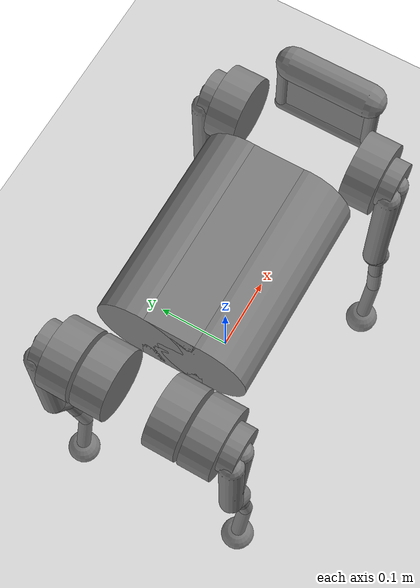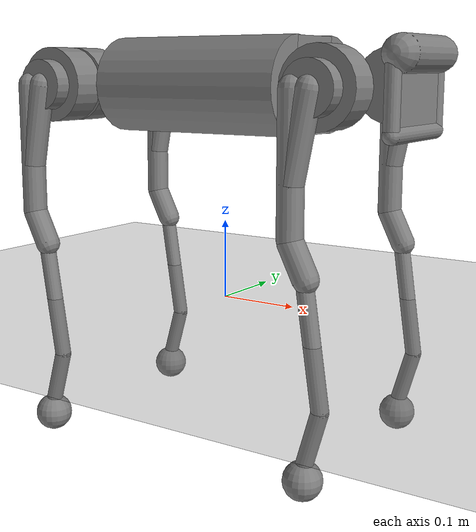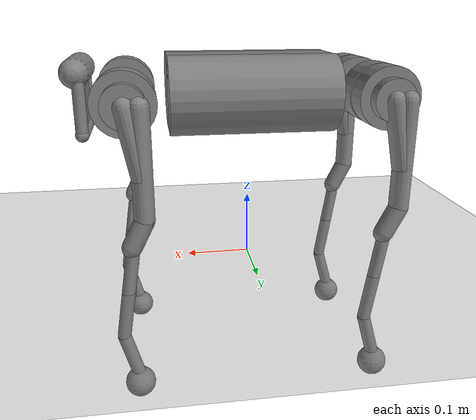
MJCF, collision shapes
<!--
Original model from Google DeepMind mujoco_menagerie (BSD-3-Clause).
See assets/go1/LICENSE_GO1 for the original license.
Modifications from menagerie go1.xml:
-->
<?xml version="1.0" encoding="utf-8"?>
<mujoco model="go1">
  <compiler angle="radian" meshdir="go1" autolimits="true"/>
  <option timestep="0.002" gravity="0 0 -9.81" iterations="50" solver="Newton"
          cone="elliptic" impratio="10"/>

  <visual>
    <headlight ambient="0.5 0.5 0.5" diffuse="0.8 0.8 0.8" specular="0.1 0.1 0.1"/>
    <map force="0.1" zfar="200"/>
    <quality shadowsize="2048"/>
  </visual>

  <asset>
    <texture type="skybox" builtin="gradient" rgb1="0.4 0.6 0.8" rgb2="0.05 0.05 0.2"
             width="100" height="100"/>
    <texture name="floor_tex" type="2d" builtin="checker" rgb1="0.6 0.6 0.6"
             rgb2="0.4 0.4 0.4" width="300" height="300"/>
    <material name="floor_mat" texture="floor_tex" texrepeat="10 10"
              specular="0.5" shininess="0.3" reflectance="0.1"/>
    <material name="dark" rgba="0.2 0.2 0.2 1"/>

    <mesh file="trunk.stl"/>
    <mesh file="hip.stl"/>
    <mesh file="thigh_mirror.stl"/>
    <mesh file="calf.stl"/>
    <mesh file="thigh.stl"/>
  </asset>

  <default>
    <default class="go1">
      <geom friction="1.0 0.01 0.005" margin="0.001" condim="3"/>
      <joint axis="0 1 0" damping="2" armature="0.01" frictionloss="0.2"/>
      <default class="abduction">
        <joint axis="1 0 0" damping="1" range="-0.863 0.863"/>
      </default>
      <default class="hip">
        <joint range="-0.686 4.501"/>
      </default>
      <default class="knee">
        <joint range="-2.818 -0.888"/>
      </default>
      <default class="visual">
        <geom type="mesh" contype="0" conaffinity="0" group="2" material="dark"/>
      </default>
      <default class="collision">
        <geom group="3" type="capsule"/>
        <default class="hip_left1">
          <geom size="0.046 0.02" pos="0 0.045 0" quat="1 1 0 0" type="cylinder"/>
        </default>
        <default class="hip_left2">
          <geom size="0.031 0.02" pos="0 0.065 0" quat="1 1 0 0" type="cylinder"/>
        </default>
        <default class="hip_left3">
          <geom size="0.046 0.02" quat="1 1 0 0" type="cylinder"/>
        </default>
        <default class="hip_right1">
          <geom size="0.046 0.02" pos="0 -0.045 0" quat="1 1 0 0" type="cylinder"/>
        </default>
        <default class="hip_right2">
          <geom size="0.031 0.02" pos="0 -0.065 0" quat="1 1 0 0" type="cylinder"/>
        </default>
        <default class="hip_right3">
          <geom size="0.046 0.02" quat="1 1 0 0" type="cylinder"/>
        </default>
        <default class="thigh1">
          <geom size="0.015" fromto="-0.02 0 0 -0.02 0 -0.16"/>
        </default>
        <default class="thigh2">
          <geom size="0.015" fromto="0 0 0 -0.02 0 -0.1"/>
        </default>
        <default class="thigh3">
          <geom size="0.015" fromto="-0.02 0 -0.16 0 0 -0.2"/>
        </default>
        <default class="calf1">
          <geom size="0.01" fromto="0 0 0 0.02 0 -0.13"/>
        </default>
        <default class="calf2">
          <geom size="0.01" fromto="0.02 0 -0.13 0 0 -0.2"/>
        </default>
        <default class="foot">
          <geom type="sphere" size="0.023" pos="0 0 -0.213" priority="1"
                solimp="0.015 1 0.023" condim="6" friction="1.0 0.02 0.01"/>
        </default>
      </default>
    </default>
    <motor ctrllimited="true" ctrlrange="-33.5 33.5"/>
  </default>

  <worldbody>
    <light name="top" pos="0 0 3" dir="0 0 -1" directional="true"
           diffuse="0.8 0.8 0.8" specular="0.2 0.2 0.2"/>
    <light name="front" pos="2 -2 2" dir="-1 1 -1" diffuse="0.3 0.3 0.3"/>
    <light name="spotlight" mode="targetbodycom" target="trunk" pos="0 -1 2"/>
    <geom name="floor" type="plane" size="200 200 0.1" material="floor_mat"
          condim="6" friction="1.5 0.02 0.01"/>

    <body name="trunk" pos="0 0 0.27" childclass="go1">
      <camera name="tracking" mode="trackcom" pos="0 -1 0.8" xyaxes="1 0 0 0 1 1"/>
      <site name="imu_site" pos="0 0 0" size="0.01"/>
      <site name="head" pos="0.3 0 0" rgba="1 0 0 1" size="0.02" group="5"/>
      <inertial pos="0.0223 0.002 -0.0005" quat="-0.00342088 0.705204 0.000106698 0.708996"
                mass="5.204" diaginertia="0.0716565 0.0630105 0.0168101"/>
      <freejoint name="root"/>
      <geom class="visual" mesh="trunk"/>
      <geom class="collision" size="0.125 0.04 0.057" type="box"/>
      <geom class="collision" quat="1 0 1 0" pos="0 -0.04 0" size="0.058 0.125" type="cylinder"/>
      <geom class="collision" quat="1 0 1 0" pos="0 +0.04 0" size="0.058 0.125" type="cylinder"/>
      <geom class="collision" pos="0.25 0 0" size="0.005 0.06 0.05" type="box"/>
      <geom class="collision" pos="0.25 0.06 -0.01" size="0.009 0.035"/>
      <geom class="collision" pos="0.25 -0.06 -0.01" size="0.009 0.035"/>
      <geom class="collision" pos="0.25 0 -0.05" size="0.01 0.06" quat="1 1 0 0"/>
      <geom class="collision" pos="0.255 0 0.0355" size="0.021 0.052" quat="1 1 0 0"/>

      <!-- ═══ FR (Front-Right) leg ═══ -->
      <body name="FR_hip" pos="0.1881 -0.04675 0">
        <inertial pos="-0.0049166 0.00762615 -8.865e-05"
                  quat="0.507341 0.514169 0.495027 0.482891" mass="0.68"
                  diaginertia="0.000734064 0.000468438 0.000398719"/>
        <joint class="abduction" name="FR_hip_joint"/>
        <geom class="visual" mesh="hip" quat="1 0 0 0"/>
        <geom class="hip_right1"/>
        <geom class="hip_right2"/>
        <body name="FR_thigh" pos="0 -0.08 0">
          <inertial pos="-0.00304722 0.019315 -0.0305004"
                    quat="0.65243 -0.0272313 0.0775126 0.753383" mass="1.009"
                    diaginertia="0.00478717 0.00460903 0.000709268"/>
          <joint class="hip" name="FR_thigh_joint"/>
          <geom class="visual" mesh="thigh_mirror"/>
          <geom class="thigh1"/>
          <geom class="thigh2"/>
          <geom class="thigh3"/>
          <body name="FR_calf" pos="0 0 -0.213">
            <inertial pos="0.00429862 0.000976676 -0.146197"
                      quat="0.691246 0.00357467 0.00511118 0.722592"
                      mass="0.195862" diaginertia="0.00149767 0.00148468 3.58427e-05"/>
            <joint class="knee" name="FR_calf_joint"/>
            <geom class="visual" mesh="calf"/>
            <geom class="calf1"/>
            <geom class="calf2"/>
            <geom name="FR" class="foot"/>
            <site name="FR_foot_site" pos="0 0 -0.213" type="sphere" size="0.023" group="5"/>
          </body>
        </body>
      </body>

      <!-- ═══ FL (Front-Left) leg ═══ -->
      <body name="FL_hip" pos="0.1881 0.04675 0">
        <inertial pos="-0.0049166 -0.00762615 -8.865e-05"
                  quat="0.482891 0.495027 0.514169 0.507341" mass="0.68"
                  diaginertia="0.000734064 0.000468438 0.000398719"/>
        <joint class="abduction" name="FL_hip_joint"/>
        <geom class="visual" mesh="hip"/>
        <geom class="hip_left1"/>
        <geom class="hip_left2"/>
        <body name="FL_thigh" pos="0 0.08 0">
          <inertial pos="-0.00304722 -0.019315 -0.0305004"
                    quat="0.753383 0.0775126 -0.0272313 0.65243" mass="1.009"
                    diaginertia="0.00478717 0.00460903 0.000709268"/>
          <joint class="hip" name="FL_thigh_joint"/>
          <geom class="visual" mesh="thigh"/>
          <geom class="thigh1"/>
          <geom class="thigh2"/>
          <geom class="thigh3"/>
          <body name="FL_calf" pos="0 0 -0.213">
            <inertial pos="0.00429862 0.000976676 -0.146197"
                      quat="0.691246 0.00357467 0.00511118 0.722592"
                      mass="0.195862" diaginertia="0.00149767 0.00148468 3.58427e-05"/>
            <joint class="knee" name="FL_calf_joint"/>
            <geom class="visual" mesh="calf"/>
            <geom class="calf1"/>
            <geom class="calf2"/>
            <geom name="FL" class="foot"/>
            <site name="FL_foot_site" pos="0 0 -0.213" type="sphere" size="0.023" group="5"/>
          </body>
        </body>
      </body>

      <!-- ═══ RR (Rear-Right) leg ═══ -->
      <body name="RR_hip" pos="-0.1881 -0.04675 0">
        <inertial pos="0.0049166 0.00762615 -8.865e-05"
                  quat="0.495027 0.482891 0.507341 0.514169" mass="0.68"
                  diaginertia="0.000734064 0.000468438 0.000398719"/>
        <joint class="abduction" name="RR_hip_joint"/>
        <geom class="visual" quat="0 0 0 -1" mesh="hip"/>
        <geom class="hip_right1"/>
        <geom class="hip_right2"/>
        <geom class="hip_right3"/>
        <body name="RR_thigh" pos="0 -0.08 0">
          <inertial pos="-0.00304722 0.019315 -0.0305004"
                    quat="0.65243 -0.0272313 0.0775126 0.753383" mass="1.009"
                    diaginertia="0.00478717 0.00460903 0.000709268"/>
          <joint class="hip" name="RR_thigh_joint"/>
          <geom class="visual" mesh="thigh_mirror"/>
          <geom class="thigh1"/>
          <geom class="thigh2"/>
          <geom class="thigh3"/>
          <body name="RR_calf" pos="0 0 -0.213">
            <inertial pos="0.00429862 0.000976676 -0.146197"
                      quat="0.691246 0.00357467 0.00511118 0.722592"
                      mass="0.195862" diaginertia="0.00149767 0.00148468 3.58427e-05"/>
            <joint class="knee" name="RR_calf_joint"/>
            <geom class="visual" mesh="calf"/>
            <geom class="calf1"/>
            <geom class="calf2"/>
            <geom name="RR" class="foot"/>
            <site name="RR_foot_site" pos="0 0 -0.213" type="sphere" size="0.023" group="5"/>
          </body>
        </body>
      </body>

      <!-- ═══ RL (Rear-Left) leg ═══ -->
      <body name="RL_hip" pos="-0.1881 0.04675 0">
        <inertial pos="0.0049166 -0.00762615 -8.865e-05"
                  quat="0.514169 0.507341 0.482891 0.495027" mass="0.68"
                  diaginertia="0.000734064 0.000468438 0.000398719"/>
        <joint class="abduction" name="RL_hip_joint"/>
        <geom class="visual" quat="0 0 1 0" mesh="hip"/>
        <geom class="hip_left1"/>
        <geom class="hip_left2"/>
        <geom class="hip_left3"/>
        <body name="RL_thigh" pos="0 0.08 0">
          <inertial pos="-0.00304722 -0.019315 -0.0305004"
                    quat="0.753383 0.0775126 -0.0272313 0.65243" mass="1.009"
                    diaginertia="0.00478717 0.00460903 0.000709268"/>
          <joint class="hip" name="RL_thigh_joint"/>
          <geom class="visual" mesh="thigh"/>
          <geom class="thigh1"/>
          <geom class="thigh2"/>
          <geom class="thigh3"/>
          <body name="RL_calf" pos="0 0 -0.213">
            <inertial pos="0.00429862 0.000976676 -0.146197"
                      quat="0.691246 0.00357467 0.00511118 0.722592"
                      mass="0.195862" diaginertia="0.00149767 0.00148468 3.58427e-05"/>
            <joint class="knee" name="RL_calf_joint"/>
            <geom class="visual" mesh="calf"/>
            <geom class="calf1"/>
            <geom class="calf2"/>
            <geom name="RL" class="foot"/>
            <site name="RL_foot_site" pos="0 0 -0.213" type="sphere" size="0.023" group="5"/>
          </body>
        </body>
      </body>
    </body>
  </worldbody>

  <!-- Motor actuators: env implements PD control in Python -->
  <actuator>
    <motor name="FR_hip_motor"   joint="FR_hip_joint"   gear="1"/>
    <motor name="FR_thigh_motor" joint="FR_thigh_joint" gear="1"/>
    <motor name="FR_calf_motor"  joint="FR_calf_joint"  gear="1"/>
    <motor name="FL_hip_motor"   joint="FL_hip_joint"   gear="1"/>
    <motor name="FL_thigh_motor" joint="FL_thigh_joint" gear="1"/>
    <motor name="FL_calf_motor"  joint="FL_calf_joint"  gear="1"/>
    <motor name="RR_hip_motor"   joint="RR_hip_joint"   gear="1"/>
    <motor name="RR_thigh_motor" joint="RR_thigh_joint" gear="1"/>
    <motor name="RR_calf_motor"  joint="RR_calf_joint"  gear="1"/>
    <motor name="RL_hip_motor"   joint="RL_hip_joint"   gear="1"/>
    <motor name="RL_thigh_motor" joint="RL_thigh_joint" gear="1"/>
    <motor name="RL_calf_motor"  joint="RL_calf_joint"  gear="1"/>
  </actuator>

  <sensor>
    <framelinvel name="base_linvel" objtype="site" objname="imu_site"/>
    <frameangvel name="base_angvel" objtype="site" objname="imu_site"/>
    <framequat name="base_quat" objtype="site" objname="imu_site"/>
    <accelerometer name="base_accel" site="imu_site"/>
    <gyro name="base_gyro" site="imu_site"/>
  </sensor>

  <keyframe>
    <key name="home" qpos="0 0 0.27 1 0 0 0 0 0.9 -1.8 0 0.9 -1.8 0 0.9 -1.8 0 0.9 -1.8"
         ctrl="0 0 0 0 0 0 0 0 0 0 0 0"/>
  </keyframe>
</mujoco>
